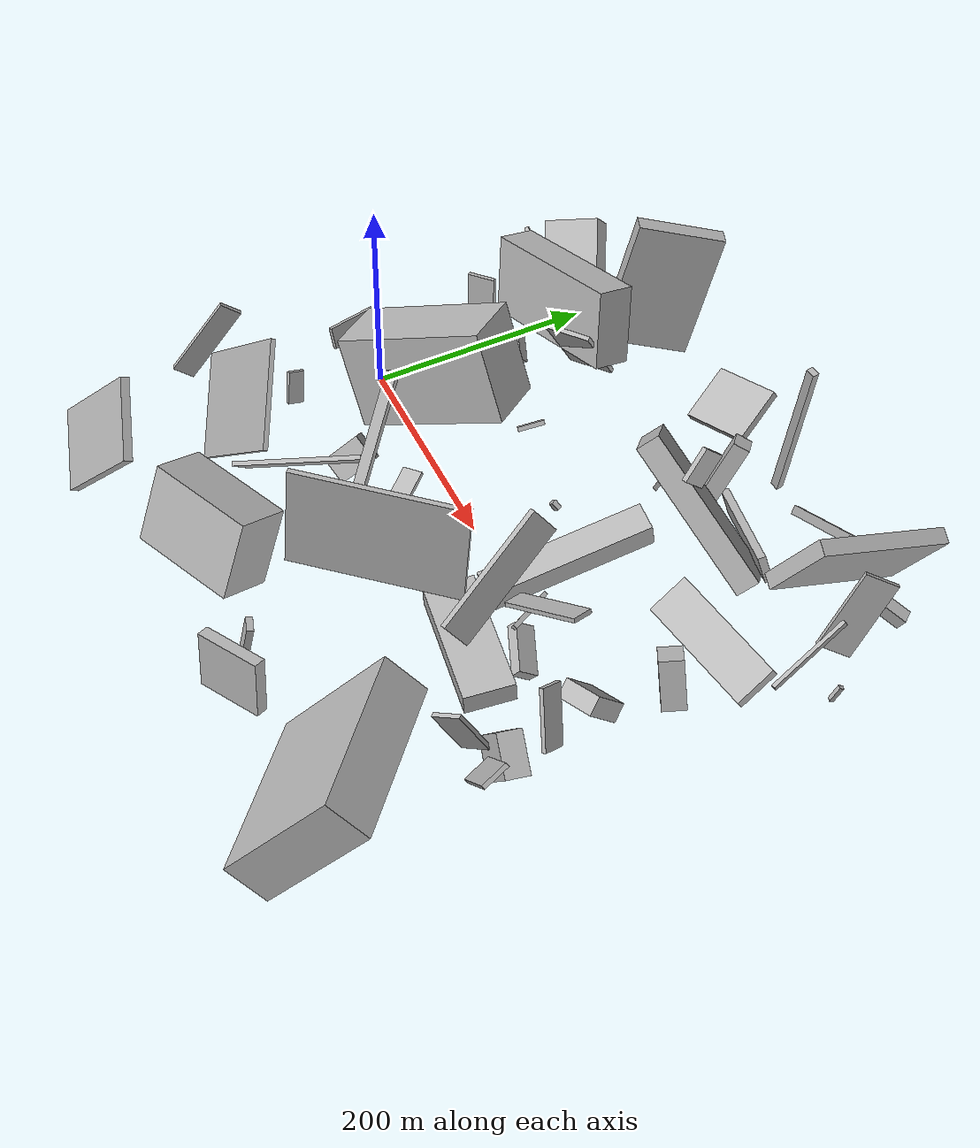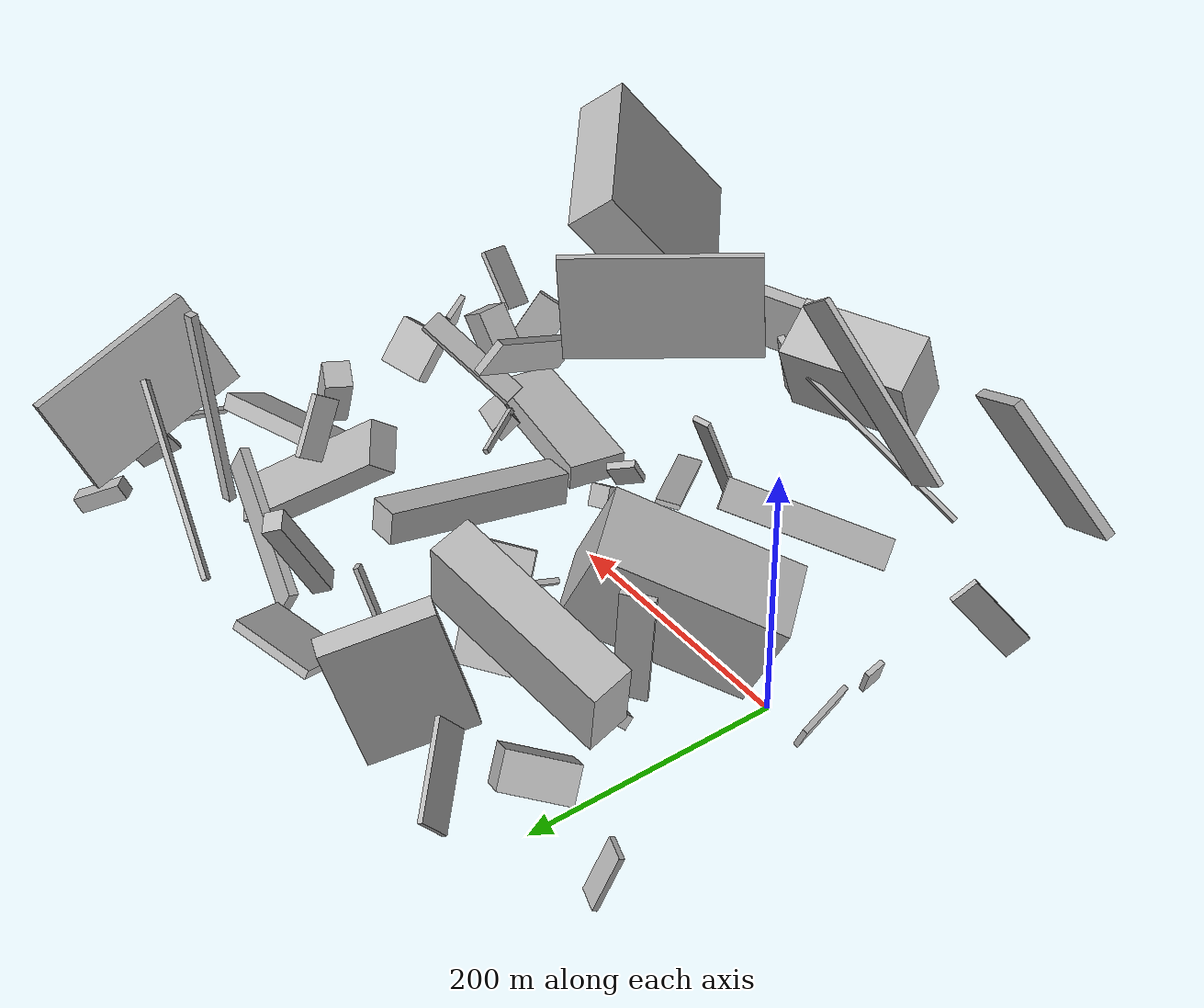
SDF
<sdf version="1.6">
 <world name="default">
  <scene>
   <sky><clouds><speed>12</speed></clouds></sky>
   <ambient>0.4 0.4 0.4 1</ambient>
   <background>0.7 0.7 0.7 1</background>
   <shadows>1</shadows>
  </scene>
  <gravity>0 0 -9.8066</gravity>
  <magnetic_field>6e-06 2.3e-05 -4.2e-05</magnetic_field>
  <physics default="0" name="default_physics" type="ode">
   <ode>
    <solver>
     <type>quick</type>
     <iters>10</iters>
     <sor>1.0</sor>
     <use_dynamic_moi_rescaling>0</use_dynamic_moi_rescaling>
    </solver>
    <constraints>
     <cfm>0</cfm>
     <erp>0.2</erp>
     <contact_max_correcting_vel>100</contact_max_correcting_vel>
     <contact_surface_layer>0.001</contact_surface_layer>
    </constraints>
   </ode>
   <max_step_size>0.004</max_step_size>
   <real_time_factor>1</real_time_factor>
   <real_time_update_rate>250</real_time_update_rate>
  </physics>
  <light name="sun" type="directional">
   <pose>0 0 10 0 0 0</pose>
   <diffuse>0.8 0.8 0.8 1</diffuse>
   <specular>0.2 0.2 0.2 1</specular>
   <attenuation>
    <range>1000</range>
    <constant>0.9</constant>
    <linear>0.01</linear>
    <quadratic>0.001</quadratic>
   </attenuation>
   <direction>-0.5 0.1 -0.9</direction>
  </light>
  <model name="building_1">
   <static>0</static>
   <pose>41.71268791923299 -175.33894534892272 82.77171198827233 0.48338681307094145 -0.6623767385465968 2.616611669872038</pose>
   <link name="link">
    <gravity>0</gravity>
    <pose>0 0 75.0 0 0 0</pose>
    <collision name="collision"><geometry><box><size>90 4 150</size></box></geometry></collision>
    <visual name="visual">
     <cast_shadows>0</cast_shadows>
     <geometry><box><size>90 4 150</size></box></geometry>
     <material>
      <script>
       <uri>model://HANNAS_wall/materials/scripts</uri>
       <uri>model://HANNAS_wall/materials/textures</uri>
       <name>vrc/HANNAS_wall</name>
      </script>
     </material>
    </visual>
   </link>
  </model>
  <model name="building_2">
   <static>0</static>
   <pose>177.7618182106887 -73.47623091710955 43.498178143630064 1.4292687550393328 -0.238738362008024 2.2593901438626824</pose>
   <link name="link">
    <gravity>0</gravity>
    <pose>0 0 9.0 0 0 0</pose>
    <collision name="collision"><geometry><box><size>79 4 18</size></box></geometry></collision>
    <visual name="visual">
     <cast_shadows>0</cast_shadows>
     <geometry><box><size>79 4 18</size></box></geometry>
     <material>
      <script>
       <uri>model://HANNAS_wall/materials/scripts</uri>
       <uri>model://HANNAS_wall/materials/textures</uri>
       <name>vrc/HANNAS_wall</name>
      </script>
     </material>
    </visual>
   </link>
  </model>
  <model name="building_3">
   <static>0</static>
   <pose>464.2811022424817 234.8402400193665 47.62410035190284 1.0776455639662683 -0.2580092666681362 -0.3487442914386646</pose>
   <link name="link">
    <gravity>0</gravity>
    <pose>0 0 16.0 0 0 0</pose>
    <collision name="collision"><geometry><box><size>4 77 32</size></box></geometry></collision>
    <visual name="visual">
     <cast_shadows>0</cast_shadows>
     <geometry><box><size>4 77 32</size></box></geometry>
     <material>
      <script>
       <uri>model://HANNAS_wall/materials/scripts</uri>
       <uri>model://HANNAS_wall/materials/textures</uri>
       <name>vrc/HANNAS_wall</name>
      </script>
     </material>
    </visual>
   </link>
  </model>
  <model name="building_4">
   <static>0</static>
   <pose>21.777933302214457 -266.2951726188458 67.79161793741308 0.8876662366316243 -0.8647834906263605 0.4569012911242351</pose>
   <link name="link">
    <gravity>0</gravity>
    <pose>0 0 4.0 0 0 0</pose>
    <collision name="collision"><geometry><box><size>121 72 8</size></box></geometry></collision>
    <visual name="visual">
     <cast_shadows>0</cast_shadows>
     <geometry><box><size>121 72 8</size></box></geometry>
     <material>
      <script>
       <uri>model://HANNAS_wall/materials/scripts</uri>
       <uri>model://HANNAS_wall/materials/textures</uri>
       <name>vrc/HANNAS_wall</name>
      </script>
     </material>
    </visual>
   </link>
  </model>
  <model name="building_5">
   <static>0</static>
   <pose>382.6047655402613 -186.9460959433899 74.25516148344704 1.4541048933920102 0.6639277091156389 0.7957914159662429</pose>
   <link name="link">
    <gravity>0</gravity>
    <pose>0 0 75.0 0 0 0</pose>
    <collision name="collision"><geometry><box><size>43 132 150</size></box></geometry></collision>
    <visual name="visual">
     <cast_shadows>0</cast_shadows>
     <geometry><box><size>43 132 150</size></box></geometry>
     <material>
      <script>
       <uri>model://HANNAS_wall/materials/scripts</uri>
       <uri>model://HANNAS_wall/materials/textures</uri>
       <name>vrc/HANNAS_wall</name>
      </script>
     </material>
    </visual>
   </link>
  </model>
  <model name="building_6">
   <static>0</static>
   <pose>325.6929509511701 -23.356375892627327 56.72129860582663 0.308522243504461 -1.0322317370368579 -3.115250700365496</pose>
   <link name="link">
    <gravity>0</gravity>
    <pose>0 0 42.0 0 0 0</pose>
    <collision name="collision"><geometry><box><size>4 19 84</size></box></geometry></collision>
    <visual name="visual">
     <cast_shadows>0</cast_shadows>
     <geometry><box><size>4 19 84</size></box></geometry>
     <material>
      <script>
       <uri>model://HANNAS_wall/materials/scripts</uri>
       <uri>model://HANNAS_wall/materials/textures</uri>
       <name>vrc/HANNAS_wall</name>
      </script>
     </material>
    </visual>
   </link>
  </model>
  <model name="building_7">
   <static>0</static>
   <pose>268.8499865511852 202.29518336849242 48.992920396625664 1.284717567866177 0.3635423556047022 0.7924861920936955</pose>
   <link name="link">
    <gravity>0</gravity>
    <pose>0 0 8.5 0 0 0</pose>
    <collision name="collision"><geometry><box><size>15 79 17</size></box></geometry></collision>
    <visual name="visual">
     <cast_shadows>0</cast_shadows>
     <geometry><box><size>15 79 17</size></box></geometry>
     <material>
      <script>
       <uri>model://HANNAS_wall/materials/scripts</uri>
       <uri>model://HANNAS_wall/materials/textures</uri>
       <name>vrc/HANNAS_wall</name>
      </script>
     </material>
    </visual>
   </link>
  </model>
  <model name="building_8">
   <static>0</static>
   <pose>266.0345033362214 -235.39428591029233 31.271578542528204 1.6564252360028953 -0.2078909000758114 -1.8932509188391595</pose>
   <link name="link">
    <gravity>0</gravity>
    <pose>0 0 8.0 0 0 0</pose>
    <collision name="collision"><geometry><box><size>6 54 16</size></box></geometry></collision>
    <visual name="visual">
     <cast_shadows>0</cast_shadows>
     <geometry><box><size>6 54 16</size></box></geometry>
     <material>
      <script>
       <uri>model://HANNAS_wall/materials/scripts</uri>
       <uri>model://HANNAS_wall/materials/textures</uri>
       <name>vrc/HANNAS_wall</name>
      </script>
     </material>
    </visual>
   </link>
  </model>
  <model name="building_9">
   <static>0</static>
   <pose>-3.852109759934164 136.3168880744614 77.93786416503238 1.2784313157837761 0.2292942626403357 1.6827597890928243</pose>
   <link name="link">
    <gravity>0</gravity>
    <pose>0 0 75.0 0 0 0</pose>
    <collision name="collision"><geometry><box><size>33 70 150</size></box></geometry></collision>
    <visual name="visual">
     <cast_shadows>0</cast_shadows>
     <geometry><box><size>33 70 150</size></box></geometry>
     <material>
      <script>
       <uri>model://HANNAS_wall/materials/scripts</uri>
       <uri>model://HANNAS_wall/materials/textures</uri>
       <name>vrc/HANNAS_wall</name>
      </script>
     </material>
    </visual>
   </link>
  </model>
  <model name="building_10">
   <static>0</static>
   <pose>324.51574905665444 220.61584225717993 78.93879405124088 -0.12689232513585655 -0.021920878828043912 -1.423113477011456</pose>
   <link name="link">
    <gravity>0</gravity>
    <pose>0 0 75.0 0 0 0</pose>
    <collision name="collision"><geometry><box><size>6 8 150</size></box></geometry></collision>
    <visual name="visual">
     <cast_shadows>0</cast_shadows>
     <geometry><box><size>6 8 150</size></box></geometry>
     <material>
      <script>
       <uri>model://HANNAS_wall/materials/scripts</uri>
       <uri>model://HANNAS_wall/materials/textures</uri>
       <name>vrc/HANNAS_wall</name>
      </script>
     </material>
    </visual>
   </link>
  </model>
  <model name="building_11">
   <static>0</static>
   <pose>274.63567969911253 -123.47077361431644 79.7428965529671 0.10552759594731041 -0.04396380359434112 -2.260873458820045</pose>
   <link name="link">
    <gravity>0</gravity>
    <pose>0 0 48.5 0 0 0</pose>
    <collision name="collision"><geometry><box><size>150 5 97</size></box></geometry></collision>
    <visual name="visual">
     <cast_shadows>0</cast_shadows>
     <geometry><box><size>150 5 97</size></box></geometry>
     <material>
      <script>
       <uri>model://HANNAS_wall/materials/scripts</uri>
       <uri>model://HANNAS_wall/materials/textures</uri>
       <name>vrc/HANNAS_wall</name>
      </script>
     </material>
    </visual>
   </link>
  </model>
  <model name="building_12">
   <static>0</static>
   <pose>124.39299196110458 -207.53131735367162 47.34759393502455 -0.4042337134013614 -0.4918627157535858 0.277004484742009</pose>
   <link name="link">
    <gravity>0</gravity>
    <pose>0 0 2.0 0 0 0</pose>
    <collision name="collision"><geometry><box><size>150 4 4</size></box></geometry></collision>
    <visual name="visual">
     <cast_shadows>0</cast_shadows>
     <geometry><box><size>150 4 4</size></box></geometry>
     <material>
      <script>
       <uri>model://HANNAS_wall/materials/scripts</uri>
       <uri>model://HANNAS_wall/materials/textures</uri>
       <name>vrc/HANNAS_wall</name>
      </script>
     </material>
    </visual>
   </link>
  </model>
  <model name="building_13">
   <static>0</static>
   <pose>85.052481975638 1.422644756655984 75.18221763294332 2.0780678746264796 -1.1316282396190427 -2.9211187454370804</pose>
   <link name="link">
    <gravity>0</gravity>
    <pose>0 0 30.5 0 0 0</pose>
    <collision name="collision"><geometry><box><size>85 140 61</size></box></geometry></collision>
    <visual name="visual">
     <cast_shadows>0</cast_shadows>
     <geometry><box><size>85 140 61</size></box></geometry>
     <material>
      <script>
       <uri>model://HANNAS_wall/materials/scripts</uri>
       <uri>model://HANNAS_wall/materials/textures</uri>
       <name>vrc/HANNAS_wall</name>
      </script>
     </material>
    </visual>
   </link>
  </model>
  <model name="building_14">
   <static>0</static>
   <pose>364.5642989392194 100.49888273954058 40.463163110902116 1.6842162353312156 -0.4975999194653037 1.7262886164356706</pose>
   <link name="link">
    <gravity>0</gravity>
    <pose>0 0 55.5 0 0 0</pose>
    <collision name="collision"><geometry><box><size>39 13 111</size></box></geometry></collision>
    <visual name="visual">
     <cast_shadows>0</cast_shadows>
     <geometry><box><size>39 13 111</size></box></geometry>
     <material>
      <script>
       <uri>model://HANNAS_wall/materials/scripts</uri>
       <uri>model://HANNAS_wall/materials/textures</uri>
       <name>vrc/HANNAS_wall</name>
      </script>
     </material>
    </visual>
   </link>
  </model>
  <model name="building_15">
   <static>0</static>
   <pose>454.82569876116617 -51.187605180656696 28.191972584815172 -0.4414585560396138 0.4114324581556441 1.9172797205692267</pose>
   <link name="link">
    <gravity>0</gravity>
    <pose>0 0 27.0 0 0 0</pose>
    <collision name="collision"><geometry><box><size>22 4 54</size></box></geometry></collision>
    <visual name="visual">
     <cast_shadows>0</cast_shadows>
     <geometry><box><size>22 4 54</size></box></geometry>
     <material>
      <script>
       <uri>model://HANNAS_wall/materials/scripts</uri>
       <uri>model://HANNAS_wall/materials/textures</uri>
       <name>vrc/HANNAS_wall</name>
      </script>
     </material>
    </visual>
   </link>
  </model>
  <model name="building_16">
   <static>0</static>
   <pose>99.52331247392098 -115.83658392867707 38.44993874665563 0.5466079397108209 -0.7823692243686458 -1.145878744010143</pose>
   <link name="link">
    <gravity>0</gravity>
    <pose>0 0 2.0 0 0 0</pose>
    <collision name="collision"><geometry><box><size>24 129 4</size></box></geometry></collision>
    <visual name="visual">
     <cast_shadows>0</cast_shadows>
     <geometry><box><size>24 129 4</size></box></geometry>
     <material>
      <script>
       <uri>model://HANNAS_wall/materials/scripts</uri>
       <uri>model://HANNAS_wall/materials/textures</uri>
       <name>vrc/HANNAS_wall</name>
      </script>
     </material>
    </visual>
   </link>
  </model>
  <model name="building_17">
   <static>0</static>
   <pose>314.4668193923676 144.23858404683125 65.4989128731069 0.7070439312482883 -0.7076184969615067 -2.7375411449471487</pose>
   <link name="link">
    <gravity>0</gravity>
    <pose>0 0 11.0 0 0 0</pose>
    <collision name="collision"><geometry><box><size>150 34 22</size></box></geometry></collision>
    <visual name="visual">
     <cast_shadows>0</cast_shadows>
     <geometry><box><size>150 34 22</size></box></geometry>
     <material>
      <script>
       <uri>model://HANNAS_wall/materials/scripts</uri>
       <uri>model://HANNAS_wall/materials/textures</uri>
       <name>vrc/HANNAS_wall</name>
      </script>
     </material>
    </visual>
   </link>
  </model>
  <model name="building_18">
   <static>0</static>
   <pose>92.3279804763585 235.9266964356582 94.15159694513788 1.7194064794558046 -0.25317083136367496 -1.9669983463500513</pose>
   <link name="link">
    <gravity>0</gravity>
    <pose>0 0 8.0 0 0 0</pose>
    <collision name="collision"><geometry><box><size>79 122 16</size></box></geometry></collision>
    <visual name="visual">
     <cast_shadows>0</cast_shadows>
     <geometry><box><size>79 122 16</size></box></geometry>
     <material>
      <script>
       <uri>model://HANNAS_wall/materials/scripts</uri>
       <uri>model://HANNAS_wall/materials/textures</uri>
       <name>vrc/HANNAS_wall</name>
      </script>
     </material>
    </visual>
   </link>
  </model>
  <model name="building_19">
   <static>0</static>
   <pose>436.56657850469674 266.7696772229949 26.515867959460543 1.5737636634950343 -1.0713388449627739 0.7023153441457805</pose>
   <link name="link">
    <gravity>0</gravity>
    <pose>0 0 6.0 0 0 0</pose>
    <collision name="collision"><geometry><box><size>13 41 12</size></box></geometry></collision>
    <visual name="visual">
     <cast_shadows>0</cast_shadows>
     <geometry><box><size>13 41 12</size></box></geometry>
     <material>
      <script>
       <uri>model://HANNAS_wall/materials/scripts</uri>
       <uri>model://HANNAS_wall/materials/textures</uri>
       <name>vrc/HANNAS_wall</name>
      </script>
     </material>
    </visual>
   </link>
  </model>
  <model name="building_20">
   <static>0</static>
   <pose>445.7756010299449 224.67479121177655 102.27357364137842 1.130973530511795 -0.3601384536304724 -1.5677825154552436</pose>
   <link name="link">
    <gravity>0</gravity>
    <pose>0 0 7.0 0 0 0</pose>
    <collision name="collision"><geometry><box><size>129 75 14</size></box></geometry></collision>
    <visual name="visual">
     <cast_shadows>0</cast_shadows>
     <geometry><box><size>129 75 14</size></box></geometry>
     <material>
      <script>
       <uri>model://HANNAS_wall/materials/scripts</uri>
       <uri>model://HANNAS_wall/materials/textures</uri>
       <name>vrc/HANNAS_wall</name>
      </script>
     </material>
    </visual>
   </link>
  </model>
  <model name="building_21">
   <static>0</static>
   <pose>280.0333680534165 46.56538424244536 34.75525812605806 2.9591726282862076 -0.1117944077275887 3.0917209089260718</pose>
   <link name="link">
    <gravity>0</gravity>
    <pose>0 0 12.5 0 0 0</pose>
    <collision name="collision"><geometry><box><size>26 150 25</size></box></geometry></collision>
    <visual name="visual">
     <cast_shadows>0</cast_shadows>
     <geometry><box><size>26 150 25</size></box></geometry>
     <material>
      <script>
       <uri>model://HANNAS_wall/materials/scripts</uri>
       <uri>model://HANNAS_wall/materials/textures</uri>
       <name>vrc/HANNAS_wall</name>
      </script>
     </material>
    </visual>
   </link>
  </model>
  <model name="building_22">
   <static>0</static>
   <pose>317.4872323874031 -83.28083917283463 12.824497300747336 0.19816032654570842 -1.5164689950975512 -1.9190286505421357</pose>
   <link name="link">
    <gravity>0</gravity>
    <pose>0 0 22.5 0 0 0</pose>
    <collision name="collision"><geometry><box><size>20 120 45</size></box></geometry></collision>
    <visual name="visual">
     <cast_shadows>0</cast_shadows>
     <geometry><box><size>20 120 45</size></box></geometry>
     <material>
      <script>
       <uri>model://HANNAS_wall/materials/scripts</uri>
       <uri>model://HANNAS_wall/materials/textures</uri>
       <name>vrc/HANNAS_wall</name>
      </script>
     </material>
    </visual>
   </link>
  </model>
  <model name="building_23">
   <static>0</static>
   <pose>323.6997256176221 -8.192975890888917 30.464406579729726 -0.11351156283281975 0.4548432231245047 0.5024873440704066</pose>
   <link name="link">
    <gravity>0</gravity>
    <pose>0 0 2.0 0 0 0</pose>
    <collision name="collision"><geometry><box><size>4 48 4</size></box></geometry></collision>
    <visual name="visual">
     <cast_shadows>0</cast_shadows>
     <geometry><box><size>4 48 4</size></box></geometry>
     <material>
      <script>
       <uri>model://HANNAS_wall/materials/scripts</uri>
       <uri>model://HANNAS_wall/materials/textures</uri>
       <name>vrc/HANNAS_wall</name>
      </script>
     </material>
    </visual>
   </link>
  </model>
  <model name="building_24">
   <static>0</static>
   <pose>446.512037734215 59.90737841509541 37.71757293584244 1.9398876422924782 0.09292744174136973 -1.9965125154699495</pose>
   <link name="link">
    <gravity>0</gravity>
    <pose>0 0 11.5 0 0 0</pose>
    <collision name="collision"><geometry><box><size>21 47 23</size></box></geometry></collision>
    <visual name="visual">
     <cast_shadows>0</cast_shadows>
     <geometry><box><size>21 47 23</size></box></geometry>
     <material>
      <script>
       <uri>model://HANNAS_wall/materials/scripts</uri>
       <uri>model://HANNAS_wall/materials/textures</uri>
       <name>vrc/HANNAS_wall</name>
      </script>
     </material>
    </visual>
   </link>
  </model>
  <model name="building_25">
   <static>0</static>
   <pose>46.03696988717168 78.5089876525425 67.57130029351202 1.7732632775854935 0.09152479929415097 -2.4677819942232477</pose>
   <link name="link">
    <gravity>0</gravity>
    <pose>0 0 2.0 0 0 0</pose>
    <collision name="collision"><geometry><box><size>25 113 4</size></box></geometry></collision>
    <visual name="visual">
     <cast_shadows>0</cast_shadows>
     <geometry><box><size>25 113 4</size></box></geometry>
     <material>
      <script>
       <uri>model://HANNAS_wall/materials/scripts</uri>
       <uri>model://HANNAS_wall/materials/textures</uri>
       <name>vrc/HANNAS_wall</name>
      </script>
     </material>
    </visual>
   </link>
  </model>
  <model name="building_26">
   <static>0</static>
   <pose>105.4368924996133 160.64197724323685 46.33604976808689 -0.5173293194431798 0.0681975599300765 -2.502572549299308</pose>
   <link name="link">
    <gravity>0</gravity>
    <pose>0 0 43.5 0 0 0</pose>
    <collision name="collision"><geometry><box><size>41 4 87</size></box></geometry></collision>
    <visual name="visual">
     <cast_shadows>0</cast_shadows>
     <geometry><box><size>41 4 87</size></box></geometry>
     <material>
      <script>
       <uri>model://HANNAS_wall/materials/scripts</uri>
       <uri>model://HANNAS_wall/materials/textures</uri>
       <name>vrc/HANNAS_wall</name>
      </script>
     </material>
    </visual>
   </link>
  </model>
  <model name="building_27">
   <static>0</static>
   <pose>36.884314009557535 242.28473440724377 50.174569861576295 1.0718201693221976 -0.49649741275341225 -0.7989923828762477</pose>
   <link name="link">
    <gravity>0</gravity>
    <pose>0 0 2.0 0 0 0</pose>
    <collision name="collision"><geometry><box><size>71 27 4</size></box></geometry></collision>
    <visual name="visual">
     <cast_shadows>0</cast_shadows>
     <geometry><box><size>71 27 4</size></box></geometry>
     <material>
      <script>
       <uri>model://HANNAS_wall/materials/scripts</uri>
       <uri>model://HANNAS_wall/materials/textures</uri>
       <name>vrc/HANNAS_wall</name>
      </script>
     </material>
    </visual>
   </link>
  </model>
  <model name="building_28">
   <static>0</static>
   <pose>175.2231705179682 -236.66358325732293 52.43405030067682 -0.41824591367452824 0.0011236456239742808 0.4112635576638869</pose>
   <link name="link">
    <gravity>0</gravity>
    <pose>0 0 35.5 0 0 0</pose>
    <collision name="collision"><geometry><box><size>98 49 71</size></box></geometry></collision>
    <visual name="visual">
     <cast_shadows>0</cast_shadows>
     <geometry><box><size>98 49 71</size></box></geometry>
     <material>
      <script>
       <uri>model://HANNAS_wall/materials/scripts</uri>
       <uri>model://HANNAS_wall/materials/textures</uri>
       <name>vrc/HANNAS_wall</name>
      </script>
     </material>
    </visual>
   </link>
  </model>
  <model name="building_29">
   <static>0</static>
   <pose>2.220595725931917 195.0334660686798 55.786165731463946 0.4002445158759725 -0.8546734492811827 -0.9777251345788267</pose>
   <link name="link">
    <gravity>0</gravity>
    <pose>0 0 23.5 0 0 0</pose>
    <collision name="collision"><geometry><box><size>27 50 47</size></box></geometry></collision>
    <visual name="visual">
     <cast_shadows>0</cast_shadows>
     <geometry><box><size>27 50 47</size></box></geometry>
     <material>
      <script>
       <uri>model://HANNAS_wall/materials/scripts</uri>
       <uri>model://HANNAS_wall/materials/textures</uri>
       <name>vrc/HANNAS_wall</name>
      </script>
     </material>
    </visual>
   </link>
  </model>
  <model name="building_30">
   <static>0</static>
   <pose>402.6828425129199 -118.34523769811277 28.307303364659983 -0.3685915734334383 -1.0265913694743507 -2.09006755483291</pose>
   <link name="link">
    <gravity>0</gravity>
    <pose>0 0 14.5 0 0 0</pose>
    <collision name="collision"><geometry><box><size>46 4 29</size></box></geometry></collision>
    <visual name="visual">
     <cast_shadows>0</cast_shadows>
     <geometry><box><size>46 4 29</size></box></geometry>
     <material>
      <script>
       <uri>model://HANNAS_wall/materials/scripts</uri>
       <uri>model://HANNAS_wall/materials/textures</uri>
       <name>vrc/HANNAS_wall</name>
      </script>
     </material>
    </visual>
   </link>
  </model>
  <model name="building_31">
   <static>0</static>
   <pose>348.78134842576105 -29.539578279724626 15.923586901519617 -0.33261048422206946 -0.6221451247501761 -1.7393074034983291</pose>
   <link name="link">
    <gravity>0</gravity>
    <pose>0 0 5.5 0 0 0</pose>
    <collision name="collision"><geometry><box><size>19 44 11</size></box></geometry></collision>
    <visual name="visual">
     <cast_shadows>0</cast_shadows>
     <geometry><box><size>19 44 11</size></box></geometry>
     <material>
      <script>
       <uri>model://HANNAS_wall/materials/scripts</uri>
       <uri>model://HANNAS_wall/materials/textures</uri>
       <name>vrc/HANNAS_wall</name>
      </script>
     </material>
    </visual>
   </link>
  </model>
  <model name="building_32">
   <static>0</static>
   <pose>329.62753898368624 196.92917224686755 34.48649741435901 1.8363740247998592 -0.3690136071487501 -0.27508168880130673</pose>
   <link name="link">
    <gravity>0</gravity>
    <pose>0 0 3.5 0 0 0</pose>
    <collision name="collision"><geometry><box><size>125 24 7</size></box></geometry></collision>
    <visual name="visual">
     <cast_shadows>0</cast_shadows>
     <geometry><box><size>125 24 7</size></box></geometry>
     <material>
      <script>
       <uri>model://HANNAS_wall/materials/scripts</uri>
       <uri>model://HANNAS_wall/materials/textures</uri>
       <name>vrc/HANNAS_wall</name>
      </script>
     </material>
    </visual>
   </link>
  </model>
  <model name="building_33">
   <static>0</static>
   <pose>239.8925366983533 -43.959921429442275 17.227029458977057 2.6182886114146573 -0.42023700750144977 -3.1335215288538136</pose>
   <link name="link">
    <gravity>0</gravity>
    <pose>0 0 8.5 0 0 0</pose>
    <collision name="collision"><geometry><box><size>24 9 17</size></box></geometry></collision>
    <visual name="visual">
     <cast_shadows>0</cast_shadows>
     <geometry><box><size>24 9 17</size></box></geometry>
     <material>
      <script>
       <uri>model://HANNAS_wall/materials/scripts</uri>
       <uri>model://HANNAS_wall/materials/textures</uri>
       <name>vrc/HANNAS_wall</name>
      </script>
     </material>
    </visual>
   </link>
  </model>
  <model name="building_34">
   <static>0</static>
   <pose>146.9922415479345 -77.51439769206381 82.70300909459355 1.3083122980049118 -0.9922803711109986 2.1666101204940618</pose>
   <link name="link">
    <gravity>0</gravity>
    <pose>0 0 6.0 0 0 0</pose>
    <collision name="collision"><geometry><box><size>150 4 12</size></box></geometry></collision>
    <visual name="visual">
     <cast_shadows>0</cast_shadows>
     <geometry><box><size>150 4 12</size></box></geometry>
     <material>
      <script>
       <uri>model://HANNAS_wall/materials/scripts</uri>
       <uri>model://HANNAS_wall/materials/textures</uri>
       <name>vrc/HANNAS_wall</name>
      </script>
     </material>
    </visual>
   </link>
  </model>
  <model name="building_35">
   <static>0</static>
   <pose>-48.98628819642486 -6.332672747676813 24.959538000552254 1.1738516252908977 0.0818333988607502 1.853736648616498</pose>
   <link name="link">
    <gravity>0</gravity>
    <pose>0 0 2.0 0 0 0</pose>
    <collision name="collision"><geometry><box><size>49 20 4</size></box></geometry></collision>
    <visual name="visual">
     <cast_shadows>0</cast_shadows>
     <geometry><box><size>49 20 4</size></box></geometry>
     <material>
      <script>
       <uri>model://HANNAS_wall/materials/scripts</uri>
       <uri>model://HANNAS_wall/materials/textures</uri>
       <name>vrc/HANNAS_wall</name>
      </script>
     </material>
    </visual>
   </link>
  </model>
  <model name="building_36">
   <static>0</static>
   <pose>44.007847931281404 109.74753316811335 24.588351045726913 0.49169972032306863 -0.6236236813531514 0.9253084992861974</pose>
   <link name="link">
    <gravity>0</gravity>
    <pose>0 0 5.0 0 0 0</pose>
    <collision name="collision"><geometry><box><size>35 25 10</size></box></geometry></collision>
    <visual name="visual">
     <cast_shadows>0</cast_shadows>
     <geometry><box><size>35 25 10</size></box></geometry>
     <material>
      <script>
       <uri>model://HANNAS_wall/materials/scripts</uri>
       <uri>model://HANNAS_wall/materials/textures</uri>
       <name>vrc/HANNAS_wall</name>
      </script>
     </material>
    </visual>
   </link>
  </model>
  <model name="building_37">
   <static>0</static>
   <pose>-26.640788147893435 -71.95192730595187 16.904440471247334 -2.746538001117623 -0.26899644414396995 -1.5316207112814515</pose>
   <link name="link">
    <gravity>0</gravity>
    <pose>0 0 15.0 0 0 0</pose>
    <collision name="collision"><geometry><box><size>15 4 30</size></box></geometry></collision>
    <visual name="visual">
     <cast_shadows>0</cast_shadows>
     <geometry><box><size>15 4 30</size></box></geometry>
     <material>
      <script>
       <uri>model://HANNAS_wall/materials/scripts</uri>
       <uri>model://HANNAS_wall/materials/textures</uri>
       <name>vrc/HANNAS_wall</name>
      </script>
     </material>
    </visual>
   </link>
  </model>
  <model name="building_38">
   <static>0</static>
   <pose>450.066009145107 -266.3092737072475 18.63466210550775 0.039514240876850536 -0.2542501201997037 -2.473948385111359</pose>
   <link name="link">
    <gravity>0</gravity>
    <pose>0 0 9.0 0 0 0</pose>
    <collision name="collision"><geometry><box><size>27 28 18</size></box></geometry></collision>
    <visual name="visual">
     <cast_shadows>0</cast_shadows>
     <geometry><box><size>27 28 18</size></box></geometry>
     <material>
      <script>
       <uri>model://HANNAS_wall/materials/scripts</uri>
       <uri>model://HANNAS_wall/materials/textures</uri>
       <name>vrc/HANNAS_wall</name>
      </script>
     </material>
    </visual>
   </link>
  </model>
  <model name="building_39">
   <static>0</static>
   <pose>452.07881575344277 -83.98158530391689 37.77078827468934 -2.984652894257431 -0.6207169998659195 2.9409255784425343</pose>
   <link name="link">
    <gravity>0</gravity>
    <pose>0 0 23.5 0 0 0</pose>
    <collision name="collision"><geometry><box><size>38 22 47</size></box></geometry></collision>
    <visual name="visual">
     <cast_shadows>0</cast_shadows>
     <geometry><box><size>38 22 47</size></box></geometry>
     <material>
      <script>
       <uri>model://HANNAS_wall/materials/scripts</uri>
       <uri>model://HANNAS_wall/materials/textures</uri>
       <name>vrc/HANNAS_wall</name>
      </script>
     </material>
    </visual>
   </link>
  </model>
  <model name="building_40">
   <static>0</static>
   <pose>374.041332825025 238.00641561991512 70.80047519672094 1.036283975134681 -0.6831084659307911 -0.22411411685671592</pose>
   <link name="link">
    <gravity>0</gravity>
    <pose>0 0 2.0 0 0 0</pose>
    <collision name="collision"><geometry><box><size>150 8 4</size></box></geometry></collision>
    <visual name="visual">
     <cast_shadows>0</cast_shadows>
     <geometry><box><size>150 8 4</size></box></geometry>
     <material>
      <script>
       <uri>model://HANNAS_wall/materials/scripts</uri>
       <uri>model://HANNAS_wall/materials/textures</uri>
       <name>vrc/HANNAS_wall</name>
      </script>
     </material>
    </visual>
   </link>
  </model>
  <model name="building_41">
   <static>0</static>
   <pose>468.77872048975803 -125.76732678153402 44.12960820820493 -1.1559815398127418 -0.8123717248263811 -0.0322973066912823</pose>
   <link name="link">
    <gravity>0</gravity>
    <pose>0 0 13.0 0 0 0</pose>
    <collision name="collision"><geometry><box><size>49 4 26</size></box></geometry></collision>
    <visual name="visual">
     <cast_shadows>0</cast_shadows>
     <geometry><box><size>49 4 26</size></box></geometry>
     <material>
      <script>
       <uri>model://HANNAS_wall/materials/scripts</uri>
       <uri>model://HANNAS_wall/materials/textures</uri>
       <name>vrc/HANNAS_wall</name>
      </script>
     </material>
    </visual>
   </link>
  </model>
  <model name="building_42">
   <static>0</static>
   <pose>-66.329900780544 -148.3993698631693 57.98747736976472 2.188871021753736 0.05652293767906732 2.860780051740134</pose>
   <link name="link">
    <gravity>0</gravity>
    <pose>0 0 10.5 0 0 0</pose>
    <collision name="collision"><geometry><box><size>4 84 21</size></box></geometry></collision>
    <visual name="visual">
     <cast_shadows>0</cast_shadows>
     <geometry><box><size>4 84 21</size></box></geometry>
     <material>
      <script>
       <uri>model://HANNAS_wall/materials/scripts</uri>
       <uri>model://HANNAS_wall/materials/textures</uri>
       <name>vrc/HANNAS_wall</name>
      </script>
     </material>
    </visual>
   </link>
  </model>
  <model name="building_43">
   <static>0</static>
   <pose>342.70262946921855 -84.5275783749222 61.579865036935146 1.0236613769101692 0.364342607355732 -2.995802603752182</pose>
   <link name="link">
    <gravity>0</gravity>
    <pose>0 0 59.0 0 0 0</pose>
    <collision name="collision"><geometry><box><size>6 30 118</size></box></geometry></collision>
    <visual name="visual">
     <cast_shadows>0</cast_shadows>
     <geometry><box><size>6 30 118</size></box></geometry>
     <material>
      <script>
       <uri>model://HANNAS_wall/materials/scripts</uri>
       <uri>model://HANNAS_wall/materials/textures</uri>
       <name>vrc/HANNAS_wall</name>
      </script>
     </material>
    </visual>
   </link>
  </model>
  <model name="building_44">
   <static>0</static>
   <pose>303.892552576532 167.09937042917903 100.95313242339775 -0.7027550664314728 -0.07143951630134526 -2.707137885482152</pose>
   <link name="link">
    <gravity>0</gravity>
    <pose>0 0 22.5 0 0 0</pose>
    <collision name="collision"><geometry><box><size>4 32 45</size></box></geometry></collision>
    <visual name="visual">
     <cast_shadows>0</cast_shadows>
     <geometry><box><size>4 32 45</size></box></geometry>
     <material>
      <script>
       <uri>model://HANNAS_wall/materials/scripts</uri>
       <uri>model://HANNAS_wall/materials/textures</uri>
       <name>vrc/HANNAS_wall</name>
      </script>
     </material>
    </visual>
   </link>
  </model>
  <model name="building_45">
   <static>0</static>
   <pose>437.54996917603 -13.048069249321891 37.27096534036619 0.861677454918154 0.1909346696082271 -2.7747537409040324</pose>
   <link name="link">
    <gravity>0</gravity>
    <pose>0 0 8.5 0 0 0</pose>
    <collision name="collision"><geometry><box><size>35 38 17</size></box></geometry></collision>
    <visual name="visual">
     <cast_shadows>0</cast_shadows>
     <geometry><box><size>35 38 17</size></box></geometry>
     <material>
      <script>
       <uri>model://HANNAS_wall/materials/scripts</uri>
       <uri>model://HANNAS_wall/materials/textures</uri>
       <name>vrc/HANNAS_wall</name>
      </script>
     </material>
    </visual>
   </link>
  </model>
  <model name="building_46">
   <static>0</static>
   <pose>465.59718830694976 172.99923316022043 40.042866685092015 1.0639442740341252 1.1389867808970424 1.2309916364374363</pose>
   <link name="link">
    <gravity>0</gravity>
    <pose>0 0 2.0 0 0 0</pose>
    <collision name="collision"><geometry><box><size>4 79 4</size></box></geometry></collision>
    <visual name="visual">
     <cast_shadows>0</cast_shadows>
     <geometry><box><size>4 79 4</size></box></geometry>
     <material>
      <script>
       <uri>model://HANNAS_wall/materials/scripts</uri>
       <uri>model://HANNAS_wall/materials/textures</uri>
       <name>vrc/HANNAS_wall</name>
      </script>
     </material>
    </visual>
   </link>
  </model>
  <model name="building_47">
   <static>0</static>
   <pose>204.1897046294133 249.72890406773584 44.84650830297631 0.4278056508295537 -0.23652749124348876 0.3309601399464649</pose>
   <link name="link">
    <gravity>0</gravity>
    <pose>0 0 3.5 0 0 0</pose>
    <collision name="collision"><geometry><box><size>62 52 7</size></box></geometry></collision>
    <visual name="visual">
     <cast_shadows>0</cast_shadows>
     <geometry><box><size>62 52 7</size></box></geometry>
     <material>
      <script>
       <uri>model://HANNAS_wall/materials/scripts</uri>
       <uri>model://HANNAS_wall/materials/textures</uri>
       <name>vrc/HANNAS_wall</name>
      </script>
     </material>
    </visual>
   </link>
  </model>
  <model name="building_48">
   <static>0</static>
   <pose>211.81188015588808 70.69790584191156 6.709754694542765 1.2496673934217846 -0.6774185349867924 -2.5050488529623838</pose>
   <link name="link">
    <gravity>0</gravity>
    <pose>0 0 2.5 0 0 0</pose>
    <collision name="collision"><geometry><box><size>8 7 5</size></box></geometry></collision>
    <visual name="visual">
     <cast_shadows>0</cast_shadows>
     <geometry><box><size>8 7 5</size></box></geometry>
     <material>
      <script>
       <uri>model://HANNAS_wall/materials/scripts</uri>
       <uri>model://HANNAS_wall/materials/textures</uri>
       <name>vrc/HANNAS_wall</name>
      </script>
     </material>
    </visual>
   </link>
  </model>
  <model name="building_49">
   <static>0</static>
   <pose>261.51308876139115 -268.69130674450633 42.54212292753582 1.4785063435942805 0.14984406331200986 2.034940552698751</pose>
   <link name="link">
    <gravity>0</gravity>
    <pose>0 0 30.5 0 0 0</pose>
    <collision name="collision"><geometry><box><size>11 54 61</size></box></geometry></collision>
    <visual name="visual">
     <cast_shadows>0</cast_shadows>
     <geometry><box><size>11 54 61</size></box></geometry>
     <material>
      <script>
       <uri>model://HANNAS_wall/materials/scripts</uri>
       <uri>model://HANNAS_wall/materials/textures</uri>
       <name>vrc/HANNAS_wall</name>
      </script>
     </material>
    </visual>
   </link>
  </model>
  <model name="building_50">
   <static>0</static>
   <pose>232.7828617382297 169.66686651227838 25.462548502851547 1.7345350559797896 -1.2030728069191852 0.39266267756870266</pose>
   <link name="link">
    <gravity>0</gravity>
    <pose>0 0 3.0 0 0 0</pose>
    <collision name="collision"><geometry><box><size>47 4 6</size></box></geometry></collision>
    <visual name="visual">
     <cast_shadows>0</cast_shadows>
     <geometry><box><size>47 4 6</size></box></geometry>
     <material>
      <script>
       <uri>model://HANNAS_wall/materials/scripts</uri>
       <uri>model://HANNAS_wall/materials/textures</uri>
       <name>vrc/HANNAS_wall</name>
      </script>
     </material>
    </visual>
   </link>
  </model>
  <model name="building_51">
   <static>0</static>
   <pose>-62.84601736168185 189.90927873761686 22.45621855651607 1.5861939476048115 -1.1727222307024345 -1.926289774880271</pose>
   <link name="link">
    <gravity>0</gravity>
    <pose>0 0 10.0 0 0 0</pose>
    <collision name="collision"><geometry><box><size>45 4 20</size></box></geometry></collision>
    <visual name="visual">
     <cast_shadows>0</cast_shadows>
     <geometry><box><size>45 4 20</size></box></geometry>
     <material>
      <script>
       <uri>model://HANNAS_wall/materials/scripts</uri>
       <uri>model://HANNAS_wall/materials/textures</uri>
       <name>vrc/HANNAS_wall</name>
      </script>
     </material>
    </visual>
   </link>
  </model>
  <model name="building_52">
   <static>0</static>
   <pose>235.39560392823927 -71.68301761223844 20.21781608666641 2.209945667600244 -1.0836520734386135 1.696857501285699</pose>
   <link name="link">
    <gravity>0</gravity>
    <pose>0 0 11.0 0 0 0</pose>
    <collision name="collision"><geometry><box><size>23 6 22</size></box></geometry></collision>
    <visual name="visual">
     <cast_shadows>0</cast_shadows>
     <geometry><box><size>23 6 22</size></box></geometry>
     <material>
      <script>
       <uri>model://HANNAS_wall/materials/scripts</uri>
       <uri>model://HANNAS_wall/materials/textures</uri>
       <name>vrc/HANNAS_wall</name>
      </script>
     </material>
    </visual>
   </link>
  </model>
  <model name="building_53">
   <static>0</static>
   <pose>494.9312459992264 182.98128890270905 17.212451831585234 3.0130125801322087 -1.0745002704779252 1.436884605042268</pose>
   <link name="link">
    <gravity>0</gravity>
    <pose>0 0 2.0 0 0 0</pose>
    <collision name="collision"><geometry><box><size>16 4 4</size></box></geometry></collision>
    <visual name="visual">
     <cast_shadows>0</cast_shadows>
     <geometry><box><size>16 4 4</size></box></geometry>
     <material>
      <script>
       <uri>model://HANNAS_wall/materials/scripts</uri>
       <uri>model://HANNAS_wall/materials/textures</uri>
       <name>vrc/HANNAS_wall</name>
      </script>
     </material>
    </visual>
   </link>
  </model>
  <model name="building_54">
   <static>0</static>
   <pose>149.4654135397206 78.07289293850056 49.59135324096995 2.9061800669809568 0.5926333773836705 2.765924042849448</pose>
   <link name="link">
    <gravity>0</gravity>
    <pose>0 0 2.0 0 0 0</pose>
    <collision name="collision"><geometry><box><size>4 24 4</size></box></geometry></collision>
    <visual name="visual">
     <cast_shadows>0</cast_shadows>
     <geometry><box><size>4 24 4</size></box></geometry>
     <material>
      <script>
       <uri>model://HANNAS_wall/materials/scripts</uri>
       <uri>model://HANNAS_wall/materials/textures</uri>
       <name>vrc/HANNAS_wall</name>
      </script>
     </material>
    </visual>
   </link>
  </model>
  <model name="building_55">
   <static>0</static>
   <pose>102.42626480709482 -74.0226243493087 26.822081535935418 -2.3696027317204957 -0.6196798379805177 1.4257109588549475</pose>
   <link name="link">
    <gravity>0</gravity>
    <pose>0 0 9.0 0 0 0</pose>
    <collision name="collision"><geometry><box><size>36 26 18</size></box></geometry></collision>
    <visual name="visual">
     <cast_shadows>0</cast_shadows>
     <geometry><box><size>36 26 18</size></box></geometry>
     <material>
      <script>
       <uri>model://HANNAS_wall/materials/scripts</uri>
       <uri>model://HANNAS_wall/materials/textures</uri>
       <name>vrc/HANNAS_wall</name>
      </script>
     </material>
    </visual>
   </link>
  </model>
 </world>
</sdf>
